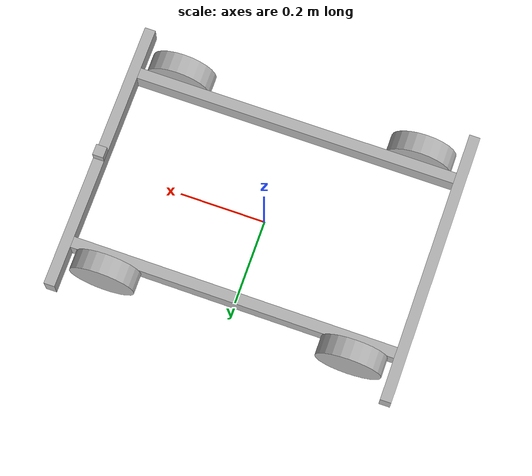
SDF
<?xml version='1.0'?>
<sdf version='1.4'>
  <model name='robomagellan_2024'>
    <!-- If static is true, the physics engine will ignore this model -->
    <static>false</static>

    <link name='chassis'>
      <pose>0 0 0.0762 0 0 0</pose>

      <!--
        The chassis will be represented with a cuboid with the above dimensions
        and a weight of 50 lbs (the max limit allowed).
      -->
      <inertial>
        <mass>22.68</mass>
        <inertia>
          <ixx>0.767</ixx>
          <iyy>1.2145</iyy>
          <izz>1.9717</izz>
          <ixy>0</ixy>
          <ixz>0</ixz>
          <iyz>0</iyz>
        </inertia>
      </inertial>

      <collision name='left_side_collision'>
        <pose>0 0.20955 0 0 0 0</pose>
        <geometry>
          <box>
            <size>0.7493 0.0254 0.0508</size>
          </box>
        </geometry>
      </collision>

      <visual name='left_side_visual'>
        <pose>0 0.20955 0 0 0 0</pose>
        <geometry>
          <box>
            <size>0.7493 0.0254 0.0508</size>
          </box>
        </geometry>
      </visual>

      <collision name='right_side_collision'>
        <pose>0 -0.20955 0 0 0 0</pose>
        <geometry>
          <box>
            <size>0.7493 0.0254 0.0508</size>
          </box>
        </geometry>
      </collision>

      <visual name='right_side_visual'>
        <pose>0 -0.20955 0 0 0 0</pose>
        <geometry>
          <box>
            <size>0.7493 0.0254 0.0508</size>
          </box>
        </geometry>
      </visual>

      <collision name='front_collision'>
        <pose>0.38735 0 0 0 0 1.5708</pose>
        <geometry>
          <box>
            <size>0.635 0.0254 0.0508</size>
          </box>
        </geometry>
      </collision>

      <visual name='front_visual'>
        <pose>0.38735 0 0 0 0 1.5708</pose>
        <geometry>
          <box>
            <size>0.635 0.0254 0.0508</size>
          </box>
        </geometry>
      </visual>

      <collision name='rear_collision'>
        <pose>-0.38735 0 0 0 0 1.5708</pose>
        <geometry>
          <box>
            <size>0.635 0.0254 0.0508</size>
          </box>
        </geometry>
      </collision>

      <visual name='rear_visual'>
        <pose>-0.38735 0 0 0 0 1.5708</pose>
        <geometry>
          <box>
            <size>0.635 0.0254 0.0508</size>
          </box>
        </geometry>
      </visual>

      <!--
        For visualization purposes a small cube will be added to the front of
        the robot.  No collision is used because the real robot does not have
        this cube.
      -->
      <visual name='cube_visual'>
        <pose>0.38735 0 0.0381 0 0 0</pose>
        <geometry>
          <box>
            <size>0.0254 0.0254 0.0254</size>
          </box>
        </geometry>
      </visual>
    </link>

    <link name='left_front_wheel'>
      <pose>0.28575 0.2447925 0.0762 1.5708 0 0</pose>
      <inertial>
        <mass>0.36196671</mass>
        <inertia>
          <ixx>0.0005867</ixx>
          <iyy>0.0005867</iyy>
          <izz>0.0010509</izz>
          <ixy>0</ixy>
          <ixz>0</ixz>
          <iyz>0</iyz>
        </inertia>
      </inertial>

      <collision name='left_front_collision'>
        <geometry>
          <cylinder>
            <radius>0.0762</radius>
            <length>0.045085</length>
          </cylinder>
        </geometry>
      </collision>

      <visual name='left_front_visual'>
        <geometry>
          <cylinder>
            <radius>0.0762</radius>
            <length>0.045085</length>
          </cylinder>
        </geometry>
      </visual>
    </link>

    <link name='left_rear_wheel'>
      <pose>-0.28575 0.2447925 0.0762 1.5708 0 0</pose>
      <inertial>
        <mass>0.36196671</mass>
        <inertia>
          <ixx>0.0005867</ixx>
          <iyy>0.0005867</iyy>
          <izz>0.0010509</izz>
          <ixy>0</ixy>
          <ixz>0</ixz>
          <iyz>0</iyz>
        </inertia>
      </inertial>
      <collision name='left_rear_collision'>
        <geometry>
          <cylinder>
            <radius>0.0762</radius>
            <length>0.045085</length>
          </cylinder>
        </geometry>
      </collision>

      <visual name='left_rear_visual'>
        <geometry>
          <cylinder>
            <radius>0.0762</radius>
            <length>0.045085</length>
          </cylinder>
        </geometry>
      </visual>
    </link>

    <link name='right_front_wheel'>
      <pose>0.28575 -0.2447925 0.0762 1.5708 0 0</pose>
      <inertial>
        <mass>0.36196671</mass>
        <inertia>
          <ixx>0.0005867</ixx>
          <iyy>0.0005867</iyy>
          <izz>0.0010509</izz>
          <ixy>0</ixy>
          <ixz>0</ixz>
          <iyz>0</iyz>
        </inertia>
      </inertial>
      <collision name='right_front_collision'>
        <geometry>
          <cylinder>
            <radius>0.0762</radius>
            <length>0.045085</length>
          </cylinder>
        </geometry>
      </collision>

      <visual name='right_front_visual'>
        <geometry>
          <cylinder>
            <radius>0.0762</radius>
            <length>0.045085</length>
          </cylinder>
        </geometry>
      </visual>
    </link>

    <link name='right_rear_wheel'>
      <pose>-0.28575 -0.2447925 0.0762 1.5708 0 0</pose>
      <inertial>
        <mass>0.36196671</mass>
        <inertia>
          <ixx>0.0005867</ixx>
          <iyy>0.0005867</iyy>
          <izz>0.0010509</izz>
          <ixy>0</ixy>
          <ixz>0</ixz>
          <iyz>0</iyz>
        </inertia>
      </inertial>
      <collision name='right_rear_collision'>
        <geometry>
          <cylinder>
            <radius>0.0762</radius>
            <length>0.045085</length>
          </cylinder>
        </geometry>
      </collision>

      <visual name='right_rear_visual'>
        <geometry>
          <cylinder>
            <radius>0.0762</radius>
            <length>0.045085</length>
          </cylinder>
        </geometry>
      </visual>
    </link>

    <!-- Joints -->
    <joint type='revolute' name='left_front_hinge'>
      <pose>0 0 0.0762 0 0 0</pose>
      <child>left_front_wheel</child>
      <parent>chassis</parent>
      <axis>
        <xyz>0 1 0</xyz>
      </axis>
    </joint>

    <joint type='revolute' name='left_rear_hinge'>
      <pose>0 0 0.0762 0 0 0</pose>
      <child>left_rear_wheel</child>
      <parent>chassis</parent>
      <axis>
        <xyz>0 1 0</xyz>
      </axis>
    </joint>

    <joint type='revolute' name='right_front_hinge'>
      <pose>0 0 0.0762 0 0 0</pose>
      <child>right_front_wheel</child>
      <parent>chassis</parent>
      <axis>
        <xyz>0 1 0</xyz>
      </axis>
    </joint>

    <joint type='revolute' name='right_rear_hinge'>
      <pose>0 0 0.0762 0 0 0</pose>
      <child>right_rear_wheel</child>
      <parent>chassis</parent>
      <axis>
        <xyz>0 1 0</xyz>
      </axis>
      </joint>
  </model>
</sdf>
